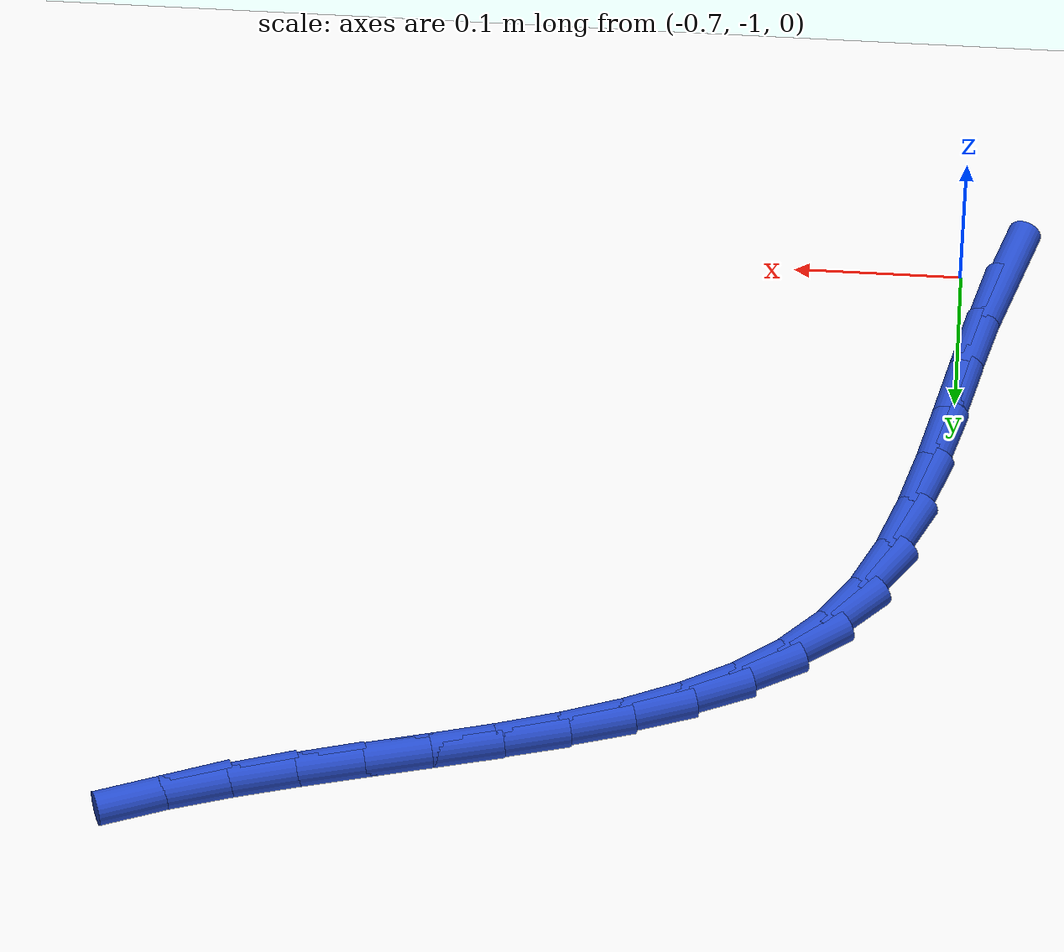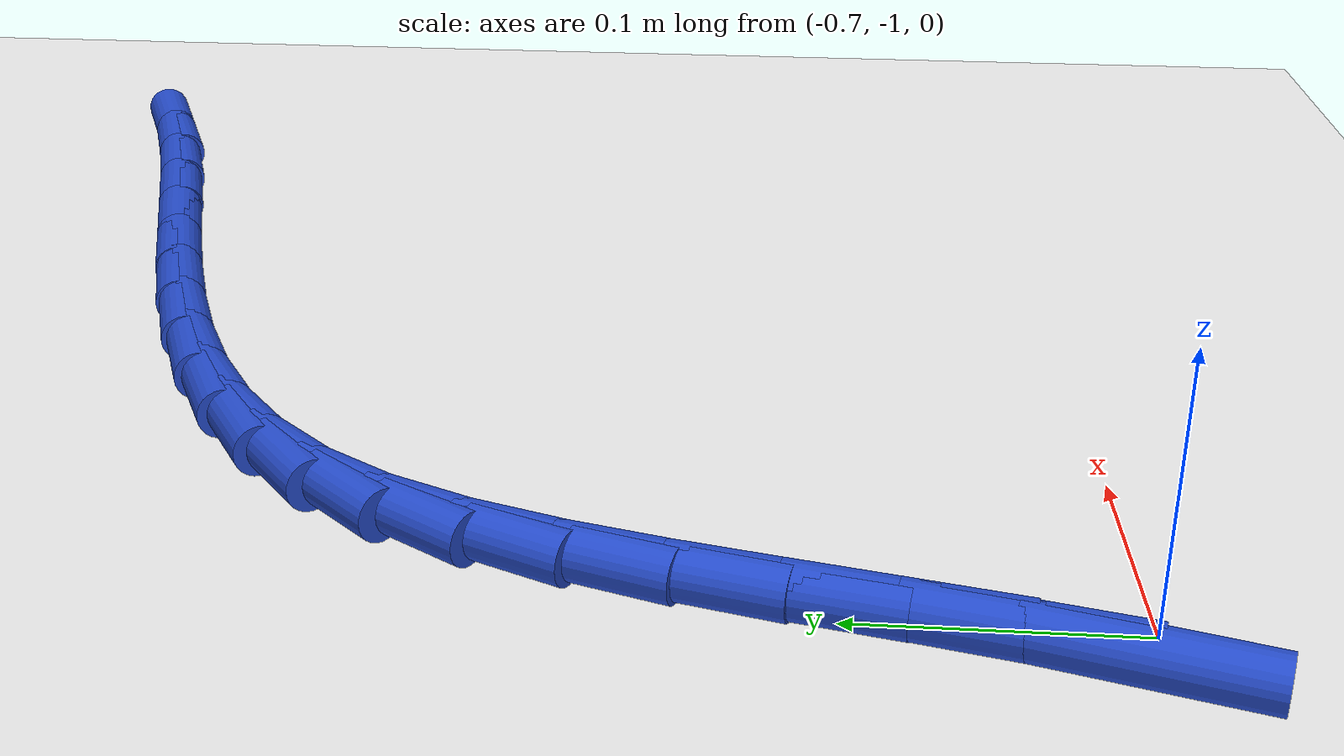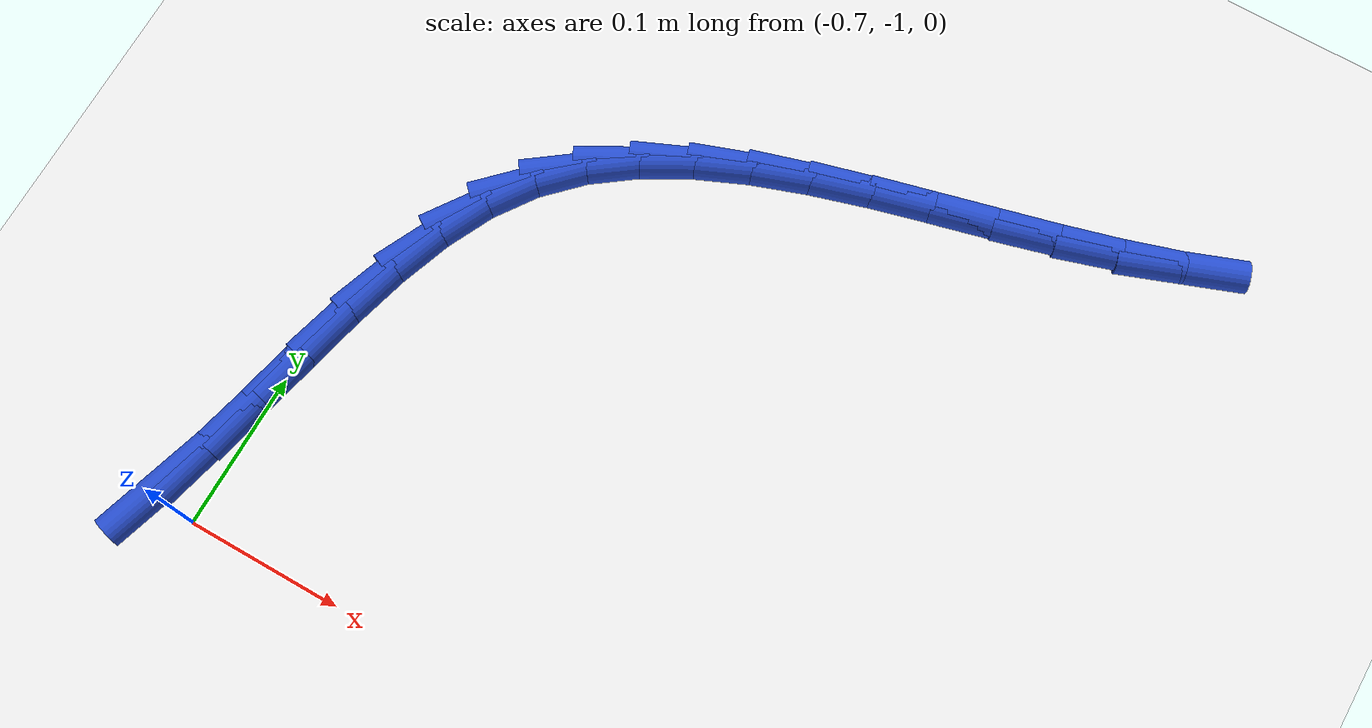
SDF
<sdf version="1.6">
 <world name="default">
  <model name="ground_plane">
   <static>1</static>
   <link name="link">
    <collision name="collision">
     <geometry><plane><normal>0 0 1</normal><size>100 100</size></plane></geometry>
     <surface><friction><ode><mu>100</mu><mu2>50</mu2></ode></friction></surface>
    </collision>
    <visual name="visual">
     <cast_shadows>0</cast_shadows>
     <geometry><plane><normal>0 0 1</normal><size>100 100</size></plane></geometry>
     <material>
      <script><uri>file://media/materials/scripts/gazebo.material</uri><name>Gazebo/WhiteGlow</name></script>
     </material>
    </visual>
   </link>
  </model>
  <model name="line">
   <link name="link_202">
    <pose>-0.725423290408976 -0.9918760438643522 0.01 0 1.57 1.2694098646206955</pose>
    <collision name="collision">
     <geometry><cylinder><radius>0.01</radius><length>0.08</length></cylinder></geometry>
    </collision>
    <visual name="visual">
     <material>
      <script><name>Gazebo/Blue</name><uri>file://media/materials/scripts/gazebo.material</uri></script>
     </material>
     <geometry><cylinder><radius>0.01</radius><length>0.08</length></cylinder></geometry>
    </visual>
   </link>
   <link name="link_203">
    <pose>-0.7145412428369586 -0.9568693320917476 0.01 0 1.57 1.3232939289875578</pose>
    <collision name="collision">
     <geometry><cylinder><radius>0.01</radius><length>0.08</length></cylinder></geometry>
    </collision>
    <visual name="visual">
     <material>
      <script><name>Gazebo/Blue</name><uri>file://media/materials/scripts/gazebo.material</uri></script>
     </material>
     <geometry><cylinder><radius>0.01</radius><length>0.08</length></cylinder></geometry>
    </visual>
   </link>
   <link name="link_204">
    <pose>-0.7053429892727783 -0.9204670118086136 0.01 0 1.57 1.3460885039242352</pose>
    <collision name="collision">
     <geometry><cylinder><radius>0.01</radius><length>0.08</length></cylinder></geometry>
    </collision>
    <visual name="visual">
     <material>
      <script><name>Gazebo/Blue</name><uri>file://media/materials/scripts/gazebo.material</uri></script>
     </material>
     <geometry><cylinder><radius>0.01</radius><length>0.08</length></cylinder></geometry>
    </visual>
   </link>
   <link name="link_205">
    <pose>-0.6968968229353036 -0.8835144649597693 0.01 0 1.57 1.3396922878993434</pose>
    <collision name="collision">
     <geometry><cylinder><radius>0.01</radius><length>0.08</length></cylinder></geometry>
    </collision>
    <visual name="visual">
     <material>
      <script><name>Gazebo/Blue</name><uri>file://media/materials/scripts/gazebo.material</uri></script>
     </material>
     <geometry><cylinder><radius>0.01</radius><length>0.08</length></cylinder></geometry>
    </visual>
   </link>
   <link name="link_206">
    <pose>-0.688271037043403 -0.8468570734900327 0.01 0 1.57 1.3032161612433453</pose>
    <collision name="collision">
     <geometry><cylinder><radius>0.01</radius><length>0.08</length></cylinder></geometry>
    </collision>
    <visual name="visual">
     <material>
      <script><name>Gazebo/Blue</name><uri>file://media/materials/scripts/gazebo.material</uri></script>
     </material>
     <geometry><cylinder><radius>0.01</radius><length>0.08</length></cylinder></geometry>
    </visual>
   </link>
   <link name="link_207">
    <pose>-0.678533924815945 -0.8113402193442234 0.01 0 1.57 1.232944523993791</pose>
    <collision name="collision">
     <geometry><cylinder><radius>0.01</radius><length>0.08</length></cylinder></geometry>
    </collision>
    <visual name="visual">
     <material>
      <script><name>Gazebo/Blue</name><uri>file://media/materials/scripts/gazebo.material</uri></script>
     </material>
     <geometry><cylinder><radius>0.01</radius><length>0.08</length></cylinder></geometry>
    </visual>
   </link>
   <link name="link_208">
    <pose>-0.6667537794717977 -0.7778092844671585 0.01 0 1.57 1.1227718496876686</pose>
    <collision name="collision">
     <geometry><cylinder><radius>0.01</radius><length>0.08</length></cylinder></geometry>
    </collision>
    <visual name="visual">
     <material>
      <script><name>Gazebo/Blue</name><uri>file://media/materials/scripts/gazebo.material</uri></script>
     </material>
     <geometry><cylinder><radius>0.01</radius><length>0.08</length></cylinder></geometry>
    </visual>
   </link>
   <link name="link_209">
    <pose>-0.6519988942298303 -0.7471096508036589 0.01 0 1.57 0.9669863195609358</pose>
    <collision name="collision">
     <geometry><cylinder><radius>0.01</radius><length>0.08</length></cylinder></geometry>
    </collision>
    <visual name="visual">
     <material>
      <script><name>Gazebo/Blue</name><uri>file://media/materials/scripts/gazebo.material</uri></script>
     </material>
     <geometry><cylinder><radius>0.01</radius><length>0.08</length></cylinder></geometry>
    </visual>
   </link>
   <link name="link_210">
    <pose>-0.6333512301542158 -0.7200740478322887 0.01 0 1.57 0.7901632709457296</pose>
    <collision name="collision">
     <geometry><cylinder><radius>0.01</radius><length>0.08</length></cylinder></geometry>
    </collision>
    <visual name="visual">
     <material>
      <script><name>Gazebo/Blue</name><uri>file://media/materials/scripts/gazebo.material</uri></script>
     </material>
     <geometry><cylinder><radius>0.01</radius><length>0.08</length></cylinder></geometry>
    </visual>
   </link>
   <link name="link_211">
    <pose>-0.6104840176947064 -0.6969878608247435 0.01 0 1.57 0.6347770046990957</pose>
    <collision name="collision">
     <geometry><cylinder><radius>0.01</radius><length>0.08</length></cylinder></geometry>
    </collision>
    <visual name="visual">
     <material>
      <script><name>Gazebo/Blue</name><uri>file://media/materials/scripts/gazebo.material</uri></script>
     </material>
     <geometry><cylinder><radius>0.01</radius><length>0.08</length></cylinder></geometry>
    </visual>
   </link>
   <link name="link_212">
    <pose>-0.5838751576423693 -0.6773915833662906 0.01 0 1.57 0.5085156369809154</pose>
    <collision name="collision">
     <geometry><cylinder><radius>0.01</radius><length>0.08</length></cylinder></geometry>
    </collision>
    <visual name="visual">
     <material>
      <script><name>Gazebo/Blue</name><uri>file://media/materials/scripts/gazebo.material</uri></script>
     </material>
     <geometry><cylinder><radius>0.01</radius><length>0.08</length></cylinder></geometry>
    </visual>
   </link>
   <link name="link_213">
    <pose>-0.5540601734162843 -0.6607723671773933 0.01 0 1.57 0.4109253700939841</pose>
    <collision name="collision">
     <geometry><cylinder><radius>0.01</radius><length>0.08</length></cylinder></geometry>
    </collision>
    <visual name="visual">
     <material>
      <script><name>Gazebo/Blue</name><uri>file://media/materials/scripts/gazebo.material</uri></script>
     </material>
     <geometry><cylinder><radius>0.01</radius><length>0.08</length></cylinder></geometry>
    </visual>
   </link>
   <link name="link_214">
    <pose>-0.5215745884355325 -0.6466173639785157 0.01 0 1.57 0.33889652766015343</pose>
    <collision name="collision">
     <geometry><cylinder><radius>0.01</radius><length>0.08</length></cylinder></geometry>
    </collision>
    <visual name="visual">
     <material>
      <script><name>Gazebo/Blue</name><uri>file://media/materials/scripts/gazebo.material</uri></script>
     </material>
     <geometry><cylinder><radius>0.01</radius><length>0.08</length></cylinder></geometry>
    </visual>
   </link>
   <link name="link_215">
    <pose>-0.486953926119193 -0.6344137254901212 0.01 0 1.57 0.2888980308655888</pose>
    <collision name="collision">
     <geometry><cylinder><radius>0.01</radius><length>0.08</length></cylinder></geometry>
    </collision>
    <visual name="visual">
     <material>
      <script><name>Gazebo/Blue</name><uri>file://media/materials/scripts/gazebo.material</uri></script>
     </material>
     <geometry><cylinder><radius>0.01</radius><length>0.08</length></cylinder></geometry>
    </visual>
   </link>
   <link name="link_216">
    <pose>-0.4507337098863483 -0.623648603432674 0.01 0 1.57 0.2580211699635412</pose>
    <collision name="collision">
     <geometry><cylinder><radius>0.01</radius><length>0.08</length></cylinder></geometry>
    </collision>
    <visual name="visual">
     <material>
      <script><name>Gazebo/Blue</name><uri>file://media/materials/scripts/gazebo.material</uri></script>
     </material>
     <geometry><cylinder><radius>0.01</radius><length>0.08</length></cylinder></geometry>
    </visual>
   </link>
   <link name="link_217">
    <pose>-0.41344946315607806 -0.6138091495266376 0.01 0 1.57 0.24431760256878496</pose>
    <collision name="collision">
     <geometry><cylinder><radius>0.01</radius><length>0.08</length></cylinder></geometry>
    </collision>
    <visual name="visual">
     <material>
      <script><name>Gazebo/Blue</name><uri>file://media/materials/scripts/gazebo.material</uri></script>
     </material>
     <geometry><cylinder><radius>0.01</radius><length>0.08</length></cylinder></geometry>
    </visual>
   </link>
   <link name="link_218">
    <pose>-0.3756367093474626 -0.6043825154924759 0.01 0 1.57 0.2468505926675104</pose>
    <collision name="collision">
     <geometry><cylinder><radius>0.01</radius><length>0.08</length></cylinder></geometry>
    </collision>
    <visual name="visual">
     <material>
      <script><name>Gazebo/Blue</name><uri>file://media/materials/scripts/gazebo.material</uri></script>
     </material>
     <geometry><cylinder><radius>0.01</radius><length>0.08</length></cylinder></geometry>
    </visual>
   </link>
   <link name="link_219">
    <pose>-0.3378309718795825 -0.5948558530506523 0.01 0 1.57 0.2656736828106292</pose>
    <collision name="collision">
     <geometry><cylinder><radius>0.01</radius><length>0.08</length></cylinder></geometry>
    </collision>
    <visual name="visual">
     <material>
      <script><name>Gazebo/Blue</name><uri>file://media/materials/scripts/gazebo.material</uri></script>
     </material>
     <geometry><cylinder><radius>0.01</radius><length>0.08</length></cylinder></geometry>
    </visual>
   </link>
   <link name="link_220">
    <pose>-0.30056777417151825 -0.5847163139216309 0.01 0 1.57 0.3018122110210113</pose>
    <collision name="collision">
     <geometry><cylinder><radius>0.01</radius><length>0.08</length></cylinder></geometry>
    </collision>
    <visual name="visual">
     <material>
      <script><name>Gazebo/Blue</name><uri>file://media/materials/scripts/gazebo.material</uri></script>
     </material>
     <geometry><cylinder><radius>0.01</radius><length>0.08</length></cylinder></geometry>
    </visual>
   </link>
   <link name="link_221">
    <pose>-0.26438263964235026 -0.5734510498258751 0.01 0 1.57 0.3572357213428258</pose>
    <collision name="collision">
     <geometry><cylinder><radius>0.01</radius><length>0.08</length></cylinder></geometry>
    </collision>
    <visual name="visual">
     <material>
      <script><name>Gazebo/Blue</name><uri>file://media/materials/scripts/gazebo.material</uri></script>
     </material>
     <geometry><cylinder><radius>0.01</radius><length>0.08</length></cylinder></geometry>
    </visual>
   </link>
  </model>
 </world>
</sdf>
